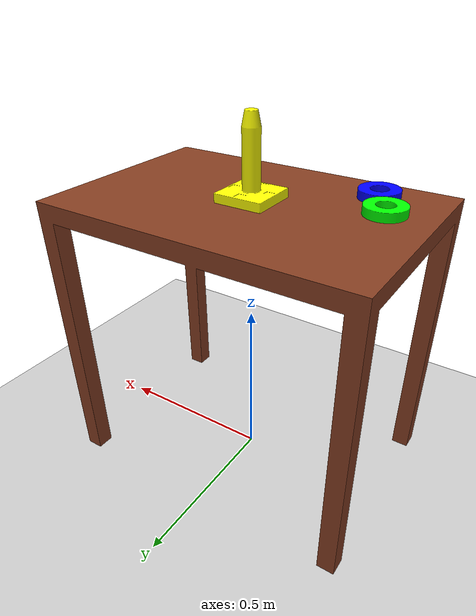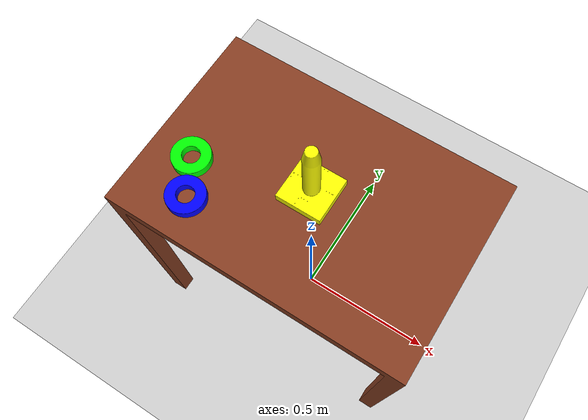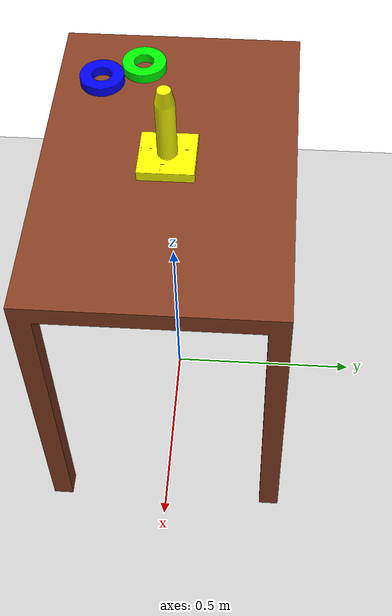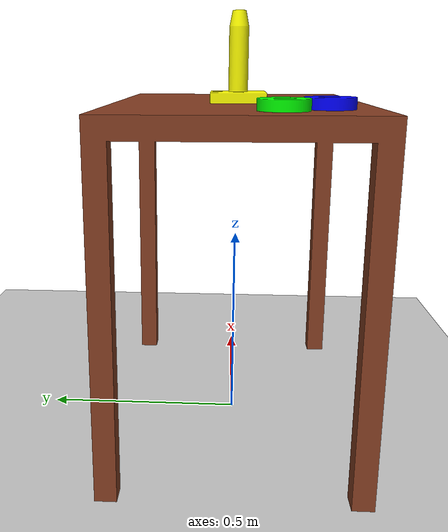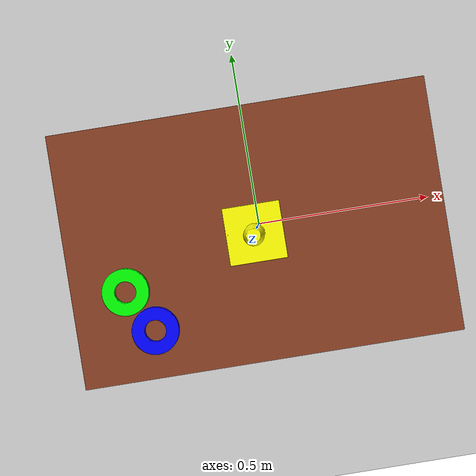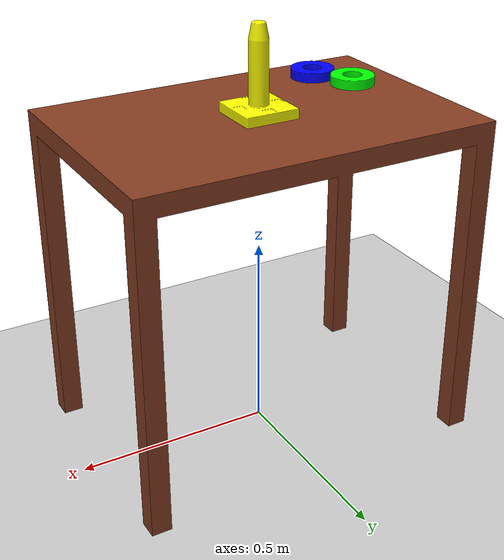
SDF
<sdf version="1.9">
 <world name="Rings">
  <model name="ground_plane">
   <static>true</static>
   <link name="link">
    <collision name="collision">
     <geometry><plane><normal>0 0 1</normal><size>100 100</size></plane></geometry>
    </collision>
    <visual name="visual">
     <geometry><plane><normal>0 0 1</normal><size>100 100</size></plane></geometry>
     <material>
      <ambient>0.8 0.8 0.8 1</ambient>
      <diffuse>0.8 0.8 0.8 1</diffuse>
      <specular>0.8 0.8 0.8 1</specular>
     </material>
    </visual>
    <inertial>
     <mass>1</mass>
     <inertia><ixx>1</ixx><ixy>0</ixy><ixz>0</ixz><iyy>1</iyy><iyz>0</iyz><izz>1</izz></inertia>
    </inertial>
   </link>
  </model>
  <model name="Table">
   <link name="link">
    <visual name="visual">
     <geometry>
      <mesh>
       <uri>file:///home/alves/Documents/Classes/Fall23/MECH495/FinalProject/groupWS/install/teleop_tasks/share/teleop_tasks/worlds/../models/Table.dae</uri>
      </mesh>
     </geometry>
    </visual>
    <collision name="collision">
     <geometry>
      <mesh>
       <uri>file:///home/alves/Documents/Classes/Fall23/MECH495/FinalProject/groupWS/install/teleop_tasks/share/teleop_tasks/worlds/../models/Table.dae</uri>
      </mesh>
     </geometry>
    </collision>
    <inertial>
     <mass>1</mass>
     <inertia><ixx>1</ixx><ixy>0</ixy><ixz>0</ixz><iyy>1</iyy><iyz>0</iyz><izz>1</izz></inertia>
    </inertial>
   </link>
   <static>true</static>
  </model>
  <model name="Base Tapered">
   <link name="link">
    <visual name="visual">
     <geometry>
      <mesh>
       <uri>file:///home/alves/Documents/Classes/Fall23/MECH495/FinalProject/groupWS/install/teleop_tasks/share/teleop_tasks/worlds/../models/Base Tapered.stl</uri>
      </mesh>
     </geometry>
     <material>
      <ambient>1 1 0 1</ambient>
      <diffuse>1 1 0 1</diffuse>
      <specular>0 0 0 0</specular>
      <emissive>0 0 0 1</emissive>
     </material>
    </visual>
    <collision name="collision">
     <geometry>
      <mesh>
       <uri>file:///home/alves/Documents/Classes/Fall23/MECH495/FinalProject/groupWS/install/teleop_tasks/share/teleop_tasks/worlds/../models/SimpleBase.stl</uri>
      </mesh>
     </geometry>
    </collision>
    <inertial>
     <mass>1</mass>
     <inertia><ixx>1</ixx><ixy>0</ixy><ixz>0</ixz><iyy>1</iyy><iyz>0</iyz><izz>1</izz></inertia>
    </inertial>
   </link>
   <pose>0 0 0.839999 0 -0 0</pose>
   <static>true</static>
  </model>
  <model name="Ring_0">
   <link name="link">
    <visual name="visual">
     <geometry>
      <mesh>
       <uri>file:///home/alves/Documents/Classes/Fall23/MECH495/FinalProject/groupWS/install/teleop_tasks/share/teleop_tasks/worlds/../models/Ring.stl</uri>
      </mesh>
     </geometry>
     <material>
      <ambient>0 1 0 1</ambient>
      <diffuse>0 1 0 1</diffuse>
      <specular>0 0 0 0</specular>
      <emissive>0 0 0 1</emissive>
     </material>
    </visual>
    <collision name="collision">
     <geometry>
      <mesh>
       <uri>file:///home/alves/Documents/Classes/Fall23/MECH495/FinalProject/groupWS/install/teleop_tasks/share/teleop_tasks/worlds/../models/SimpleRing.stl</uri>
      </mesh>
     </geometry>
    </collision>
    <inertial>
     <mass>1</mass>
     <inertia><ixx>1</ixx><ixy>0</ixy><ixz>0</ixz><iyy>1</iyy><iyz>0</iyz><izz>1</izz></inertia>
    </inertial>
   </link>
   <pose>-0.323425 -0.08953 0.839999 0 -0 -0</pose>
   <static>false</static>
  </model>
  <model name="Ring_1">
   <link name="link">
    <visual name="visual">
     <geometry>
      <mesh>
       <uri>file:///home/alves/Documents/Classes/Fall23/MECH495/FinalProject/groupWS/install/teleop_tasks/share/teleop_tasks/worlds/../models/Ring.stl</uri>
      </mesh>
     </geometry>
     <material>
      <ambient>0 0 1 1</ambient>
      <diffuse>0 0 1 1</diffuse>
      <specular>0 0 0 0</specular>
      <emissive>0 0 0 1</emissive>
     </material>
    </visual>
    <collision name="collision">
     <geometry>
      <mesh>
       <uri>file:///home/alves/Documents/Classes/Fall23/MECH495/FinalProject/groupWS/install/teleop_tasks/share/teleop_tasks/worlds/../models/SimpleRing.stl</uri>
      </mesh>
     </geometry>
    </collision>
    <inertial>
     <mass>1</mass>
     <inertia><ixx>1</ixx><ixy>0</ixy><ixz>0</ixz><iyy>1</iyy><iyz>0</iyz><izz>1</izz></inertia>
    </inertial>
   </link>
   <pose>-0.267573 -0.190364 0.839999 0 -0 -0</pose>
   <static>false</static>
  </model>
 </world>
</sdf>
